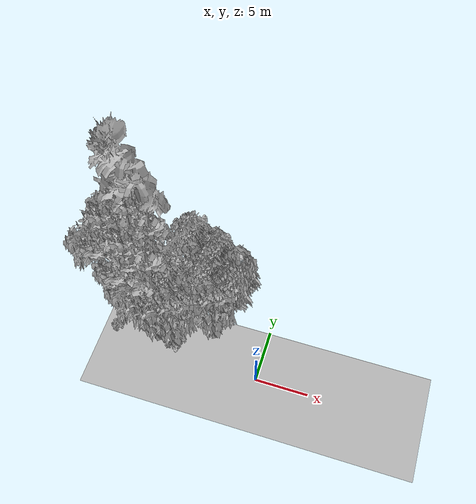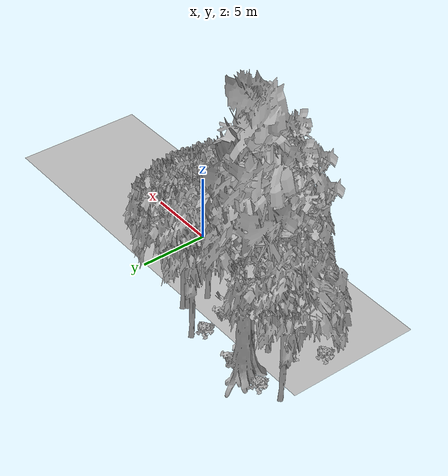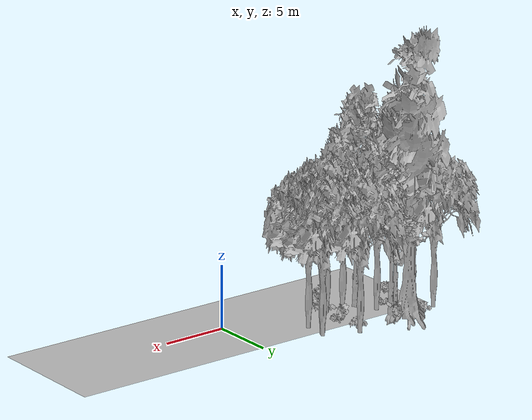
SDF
<sdf version="1.7">
 <world name="default">
  <model name="ground_plane">
   <static>1</static>
   <link name="link">
    <collision name="collision">
     <geometry><plane><normal>0 0 1</normal><size>100 100</size></plane></geometry>
     <surface><contact><ode><min_depth>0.01</min_depth><max_vel>0</max_vel></ode></contact></surface>
    </collision>
    <visual name="grass">
     <cast_shadows>0</cast_shadows>
     <geometry>
      <mesh>
       <scale>0.5814285714285714 0.18142857142857144 0.1</scale>
       <uri>file://grass_plane/meshes/grass_plane.dae</uri>
      </mesh>
     </geometry>
    </visual>
   </link>
  </model>
  <model name="Tree 104">
   <static>1</static>
   <pose>-11.782003270555286 3.67907650406325 0 1.57079 -0 0</pose>
   <link name="link">
    <collision name="collision">
     <geometry><mesh><scale>3.5 5 3.5</scale><uri>model://tree_2/meshes/tree_2.obj</uri></mesh></geometry>
    </collision>
    <visual name="visual">
     <geometry><mesh><scale>3.5 5 3.5</scale><uri>model://tree_2/meshes/tree_2.obj</uri></mesh></geometry>
    </visual>
   </link>
  </model>
  <model name="Tree 145">
   <static>1</static>
   <pose>-15.52468823960347 5.794017733938361 0 1.57079 -0 0</pose>
   <link name="link">
    <collision name="collision">
     <geometry><mesh><scale>3.5 5 3.5</scale><uri>model://tree_2/meshes/tree_2.obj</uri></mesh></geometry>
    </collision>
    <visual name="visual">
     <geometry><mesh><scale>3.5 5 3.5</scale><uri>model://tree_2/meshes/tree_2.obj</uri></mesh></geometry>
    </visual>
   </link>
  </model>
  <model name="Tree 223">
   <static>1</static>
   <pose>-11.820770404211473 5.203634216847334 0 1.57079 -0 0</pose>
   <link name="link">
    <collision name="collision">
     <geometry><mesh><scale>3.5 5 3.5</scale><uri>model://tree_9/meshes/tree_9.obj</uri></mesh></geometry>
    </collision>
    <visual name="visual">
     <geometry><mesh><scale>3.5 5 3.5</scale><uri>model://tree_9/meshes/tree_9.obj</uri></mesh></geometry>
    </visual>
   </link>
  </model>
  <model name="Tree 249">
   <static>1</static>
   <pose>-5.201410164350591 5.500910403223827 0 1.57079 -0 0</pose>
   <link name="link">
    <collision name="collision">
     <geometry><mesh><scale>3.5 5 3.5</scale><uri>model://tree_2/meshes/tree_2.obj</uri></mesh></geometry>
    </collision>
    <visual name="visual">
     <geometry><mesh><scale>3.5 5 3.5</scale><uri>model://tree_2/meshes/tree_2.obj</uri></mesh></geometry>
    </visual>
   </link>
  </model>
  <model name="Tree 300">
   <static>1</static>
   <pose>-8.379569556556923 1.929154004429975 0 1.57079 -0 0</pose>
   <link name="link">
    <collision name="collision">
     <geometry><mesh><scale>3.5 5 3.5</scale><uri>model://tree_2/meshes/tree_2.obj</uri></mesh></geometry>
    </collision>
    <visual name="visual">
     <geometry><mesh><scale>3.5 5 3.5</scale><uri>model://tree_2/meshes/tree_2.obj</uri></mesh></geometry>
    </visual>
   </link>
  </model>
  <model name="Tree 326">
   <static>1</static>
   <pose>-5.369704945541905 3.592254017258199 0 1.57079 -0 0</pose>
   <link name="link">
    <collision name="collision">
     <geometry><mesh><scale>3.5 5 3.5</scale><uri>model://tree_2/meshes/tree_2.obj</uri></mesh></geometry>
    </collision>
    <visual name="visual">
     <geometry><mesh><scale>3.5 5 3.5</scale><uri>model://tree_2/meshes/tree_2.obj</uri></mesh></geometry>
    </visual>
   </link>
  </model>
  <model name="Tree 346">
   <static>1</static>
   <pose>-9.835586830327848 2.0161673456422093 0 1.57079 -0 0</pose>
   <link name="link">
    <collision name="collision">
     <geometry><mesh><scale>3.5 5 3.5</scale><uri>model://tree_2/meshes/tree_2.obj</uri></mesh></geometry>
    </collision>
    <visual name="visual">
     <geometry><mesh><scale>3.5 5 3.5</scale><uri>model://tree_2/meshes/tree_2.obj</uri></mesh></geometry>
    </visual>
   </link>
  </model>
  <model name="Tree 367">
   <static>1</static>
   <pose>-7.751074302036024 6.708603842428232 0 1.57079 -0 0</pose>
   <link name="link">
    <collision name="collision">
     <geometry><mesh><scale>3.5 5 3.5</scale><uri>model://tree_2/meshes/tree_2.obj</uri></mesh></geometry>
    </collision>
    <visual name="visual">
     <geometry><mesh><scale>3.5 5 3.5</scale><uri>model://tree_2/meshes/tree_2.obj</uri></mesh></geometry>
    </visual>
   </link>
  </model>
  <model name="Tree 381">
   <static>1</static>
   <pose>-12.60741126739861 6.412639802741225 0 1.57079 -0 0</pose>
   <link name="link">
    <collision name="collision">
     <geometry><mesh><scale>3.5 5 3.5</scale><uri>model://tree_4/meshes/tree_4.obj</uri></mesh></geometry>
    </collision>
    <visual name="visual">
     <geometry><mesh><scale>3.5 5 3.5</scale><uri>model://tree_4/meshes/tree_4.obj</uri></mesh></geometry>
    </visual>
   </link>
  </model>
  <model name="Tree 388">
   <static>1</static>
   <pose>-10.859474301266815 2.1502927288087825 0 1.57079 -0 0</pose>
   <link name="link">
    <collision name="collision">
     <geometry><mesh><scale>3.5 5 3.5</scale><uri>model://tree_9/meshes/tree_9.obj</uri></mesh></geometry>
    </collision>
    <visual name="visual">
     <geometry><mesh><scale>3.5 5 3.5</scale><uri>model://tree_9/meshes/tree_9.obj</uri></mesh></geometry>
    </visual>
   </link>
  </model>
  <model name="Tree 433">
   <static>1</static>
   <pose>-13.340820168619409 3.8266341522016774 0 1.57079 -0 0</pose>
   <link name="link">
    <collision name="collision">
     <geometry><mesh><scale>3.5 5 3.5</scale><uri>model://tree_9/meshes/tree_9.obj</uri></mesh></geometry>
    </collision>
    <visual name="visual">
     <geometry><mesh><scale>3.5 5 3.5</scale><uri>model://tree_9/meshes/tree_9.obj</uri></mesh></geometry>
    </visual>
   </link>
  </model>
  <model name="Tree 438">
   <static>1</static>
   <pose>-5.341522557280335 5.230187943579633 0 1.57079 -0 0</pose>
   <link name="link">
    <collision name="collision">
     <geometry><mesh><scale>3.5 5 3.5</scale><uri>model://tree_2/meshes/tree_2.obj</uri></mesh></geometry>
    </collision>
    <visual name="visual">
     <geometry><mesh><scale>3.5 5 3.5</scale><uri>model://tree_2/meshes/tree_2.obj</uri></mesh></geometry>
    </visual>
   </link>
  </model>
  <model name="Bush 33">
   <static>1</static>
   <pose>-11.289899538495725 6.444898062154465 0 1.57079 -0 0</pose>
   <link name="link">
    <collision name="collision">
     <geometry><mesh><scale>2 2 2</scale><uri>model://bush_0/meshes/bush_0.obj</uri></mesh></geometry>
     <surface><contact><collide_without_contact>false</collide_without_contact></contact></surface>
    </collision>
    <visual name="visual">
     <geometry><mesh><scale>2 2 2</scale><uri>model://bush_0/meshes/bush_0.obj</uri></mesh></geometry>
    </visual>
   </link>
  </model>
  <model name="Bush 41">
   <static>1</static>
   <pose>-13.854827864489906 6.295619447596877 0 1.57079 -0 0</pose>
   <link name="link">
    <collision name="collision">
     <geometry><mesh><scale>2 2 2</scale><uri>model://bush_3/meshes/bush_3.obj</uri></mesh></geometry>
     <surface><contact><collide_without_contact>false</collide_without_contact></contact></surface>
    </collision>
    <visual name="visual">
     <geometry><mesh><scale>2 2 2</scale><uri>model://bush_3/meshes/bush_3.obj</uri></mesh></geometry>
    </visual>
   </link>
  </model>
  <model name="Bush 59">
   <static>1</static>
   <pose>-8.023746378186765 1.7456041824915012 0 1.57079 -0 0</pose>
   <link name="link">
    <collision name="collision">
     <geometry><mesh><scale>2 2 2</scale><uri>model://bush_3/meshes/bush_3.obj</uri></mesh></geometry>
     <surface><contact><collide_without_contact>false</collide_without_contact></contact></surface>
    </collision>
    <visual name="visual">
     <geometry><mesh><scale>2 2 2</scale><uri>model://bush_3/meshes/bush_3.obj</uri></mesh></geometry>
    </visual>
   </link>
  </model>
  <model name="Bush 77">
   <static>1</static>
   <pose>-8.086599868879503 0.7615124911478492 0 1.57079 -0 0</pose>
   <link name="link">
    <collision name="collision">
     <geometry><mesh><scale>2 2 2</scale><uri>model://bush_0/meshes/bush_0.obj</uri></mesh></geometry>
     <surface><contact><collide_without_contact>false</collide_without_contact></contact></surface>
    </collision>
    <visual name="visual">
     <geometry><mesh><scale>2 2 2</scale><uri>model://bush_0/meshes/bush_0.obj</uri></mesh></geometry>
    </visual>
   </link>
  </model>
  <model name="Bush 142">
   <static>1</static>
   <pose>-7.681826394644325 4.314158247586391 0 1.57079 -0 0</pose>
   <link name="link">
    <collision name="collision">
     <geometry><mesh><scale>2 2 2</scale><uri>model://bush_0/meshes/bush_0.obj</uri></mesh></geometry>
     <surface><contact><collide_without_contact>false</collide_without_contact></contact></surface>
    </collision>
    <visual name="visual">
     <geometry><mesh><scale>2 2 2</scale><uri>model://bush_0/meshes/bush_0.obj</uri></mesh></geometry>
    </visual>
   </link>
  </model>
  <model name="Bush 167">
   <static>1</static>
   <pose>-14.349933888491883 1.35785913432872 0 1.57079 -0 0</pose>
   <link name="link">
    <collision name="collision">
     <geometry><mesh><scale>2 2 2</scale><uri>model://bush_3/meshes/bush_3.obj</uri></mesh></geometry>
     <surface><contact><collide_without_contact>false</collide_without_contact></contact></surface>
    </collision>
    <visual name="visual">
     <geometry><mesh><scale>2 2 2</scale><uri>model://bush_3/meshes/bush_3.obj</uri></mesh></geometry>
    </visual>
   </link>
  </model>
  <model name="Bush 177">
   <static>1</static>
   <pose>-8.740332918968853 0.9137772187185327 0 1.57079 -0 0</pose>
   <link name="link">
    <collision name="collision">
     <geometry><mesh><scale>2 2 2</scale><uri>model://bush_5/meshes/bush_5.obj</uri></mesh></geometry>
     <surface><contact><collide_without_contact>false</collide_without_contact></contact></surface>
    </collision>
    <visual name="visual">
     <geometry><mesh><scale>2 2 2</scale><uri>model://bush_5/meshes/bush_5.obj</uri></mesh></geometry>
    </visual>
   </link>
  </model>
  <model name="Bush 234">
   <static>1</static>
   <pose>-12.958418998265628 2.927372248018269 0 1.57079 -0 0</pose>
   <link name="link">
    <collision name="collision">
     <geometry><mesh><scale>2 2 2</scale><uri>model://bush_2/meshes/bush_2.obj</uri></mesh></geometry>
     <surface><contact><collide_without_contact>false</collide_without_contact></contact></surface>
    </collision>
    <visual name="visual">
     <geometry><mesh><scale>2 2 2</scale><uri>model://bush_2/meshes/bush_2.obj</uri></mesh></geometry>
    </visual>
   </link>
  </model>
  <model name="Bush 238">
   <static>1</static>
   <pose>-7.992116710349293 5.946904897886451 0 1.57079 -0 0</pose>
   <link name="link">
    <collision name="collision">
     <geometry><mesh><scale>2 2 2</scale><uri>model://bush_3/meshes/bush_3.obj</uri></mesh></geometry>
     <surface><contact><collide_without_contact>false</collide_without_contact></contact></surface>
    </collision>
    <visual name="visual">
     <geometry><mesh><scale>2 2 2</scale><uri>model://bush_3/meshes/bush_3.obj</uri></mesh></geometry>
    </visual>
   </link>
  </model>
  <model name="Bush 256">
   <static>1</static>
   <pose>-7.998838998505782 3.5204021618277466 0 1.57079 -0 0</pose>
   <link name="link">
    <collision name="collision">
     <geometry><mesh><scale>2 2 2</scale><uri>model://bush_2/meshes/bush_2.obj</uri></mesh></geometry>
     <surface><contact><collide_without_contact>false</collide_without_contact></contact></surface>
    </collision>
    <visual name="visual">
     <geometry><mesh><scale>2 2 2</scale><uri>model://bush_2/meshes/bush_2.obj</uri></mesh></geometry>
    </visual>
   </link>
  </model>
 </world>
</sdf>
